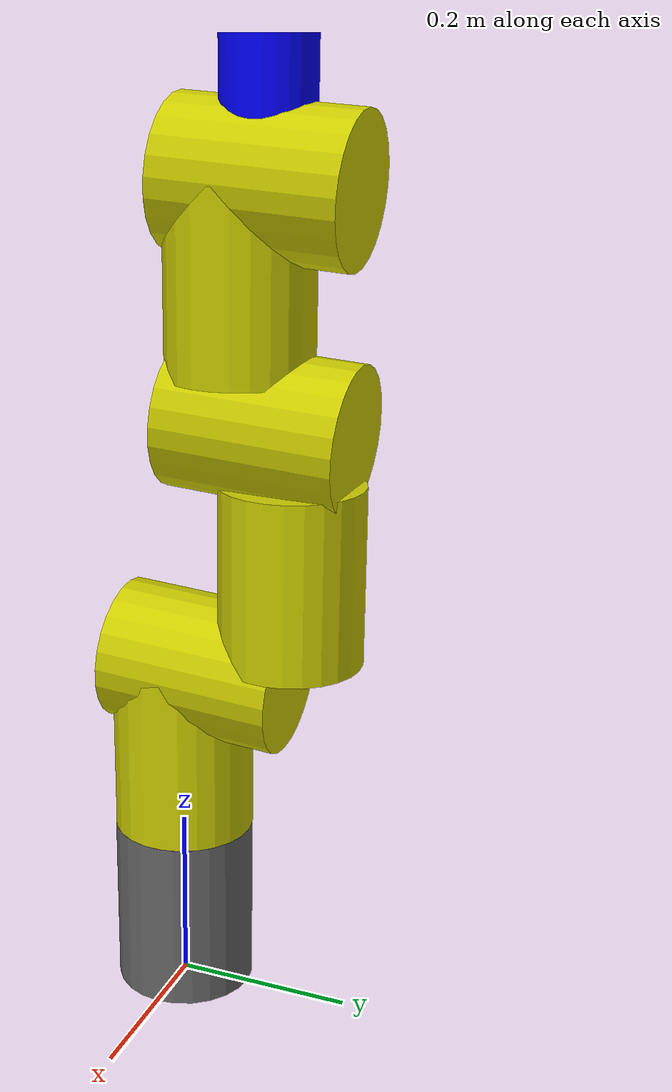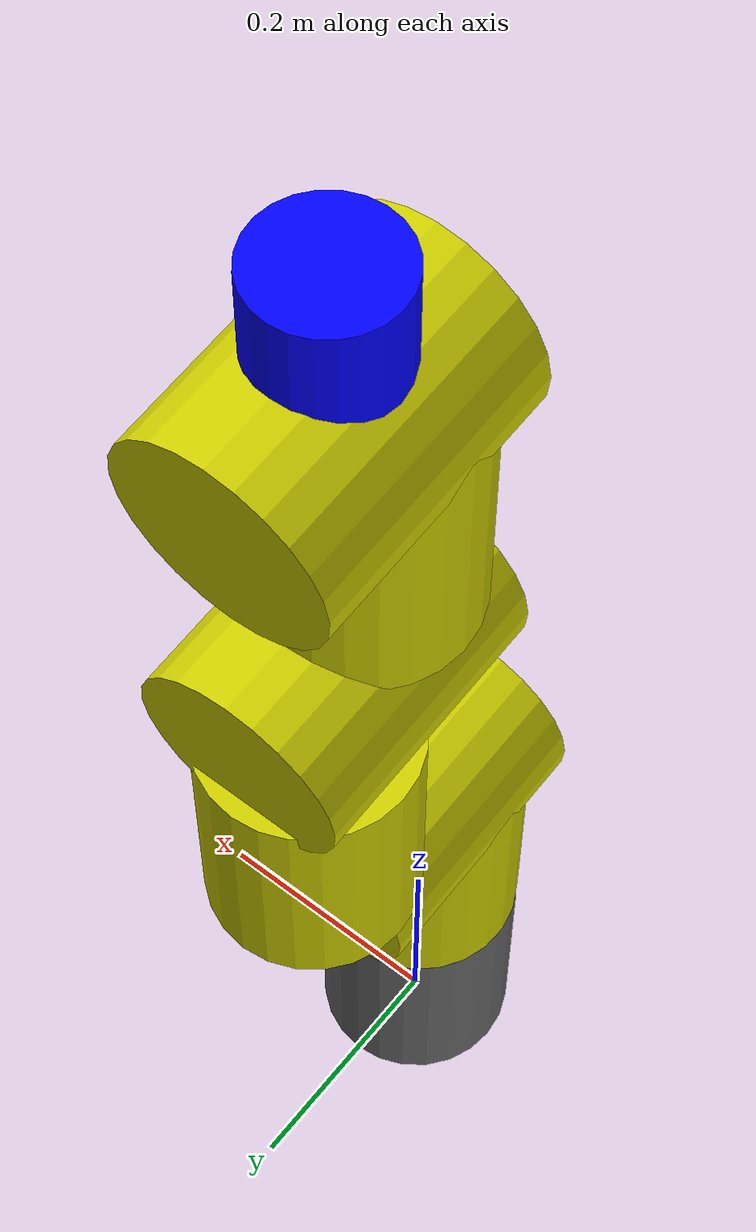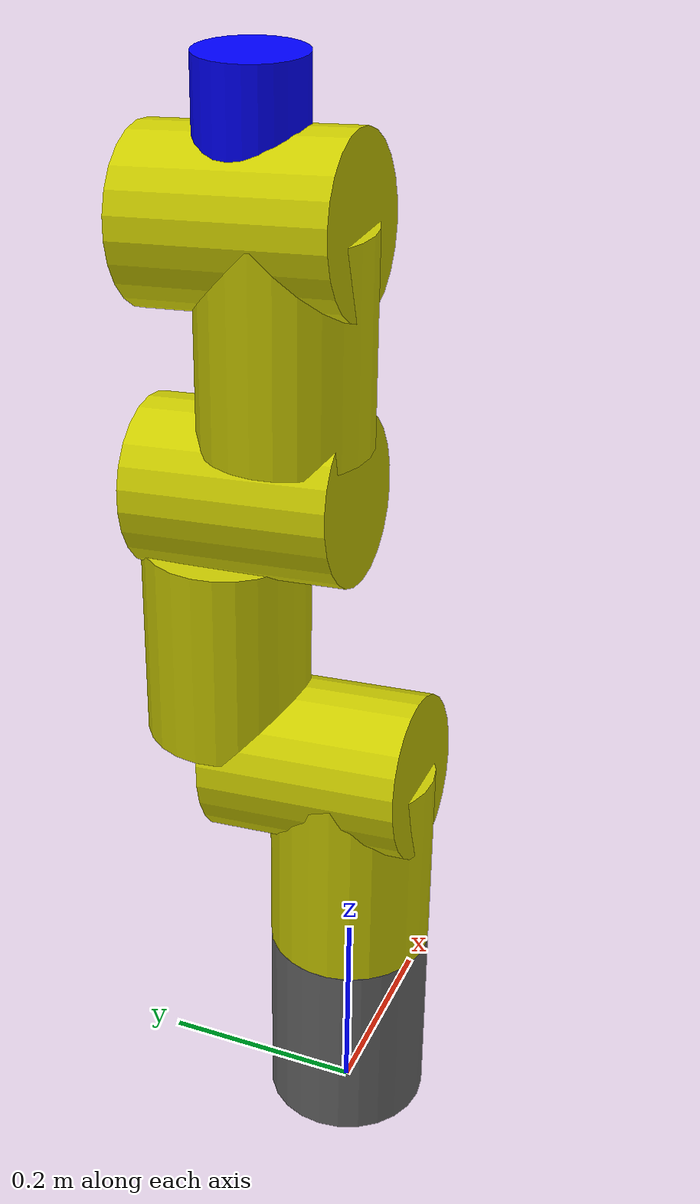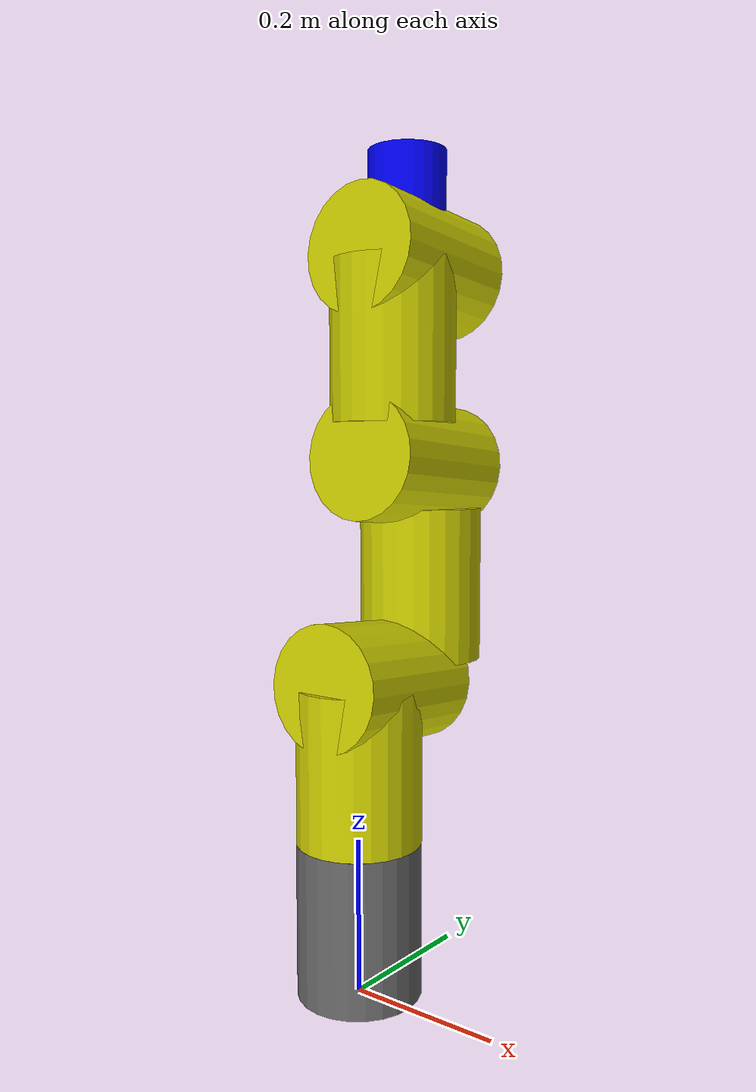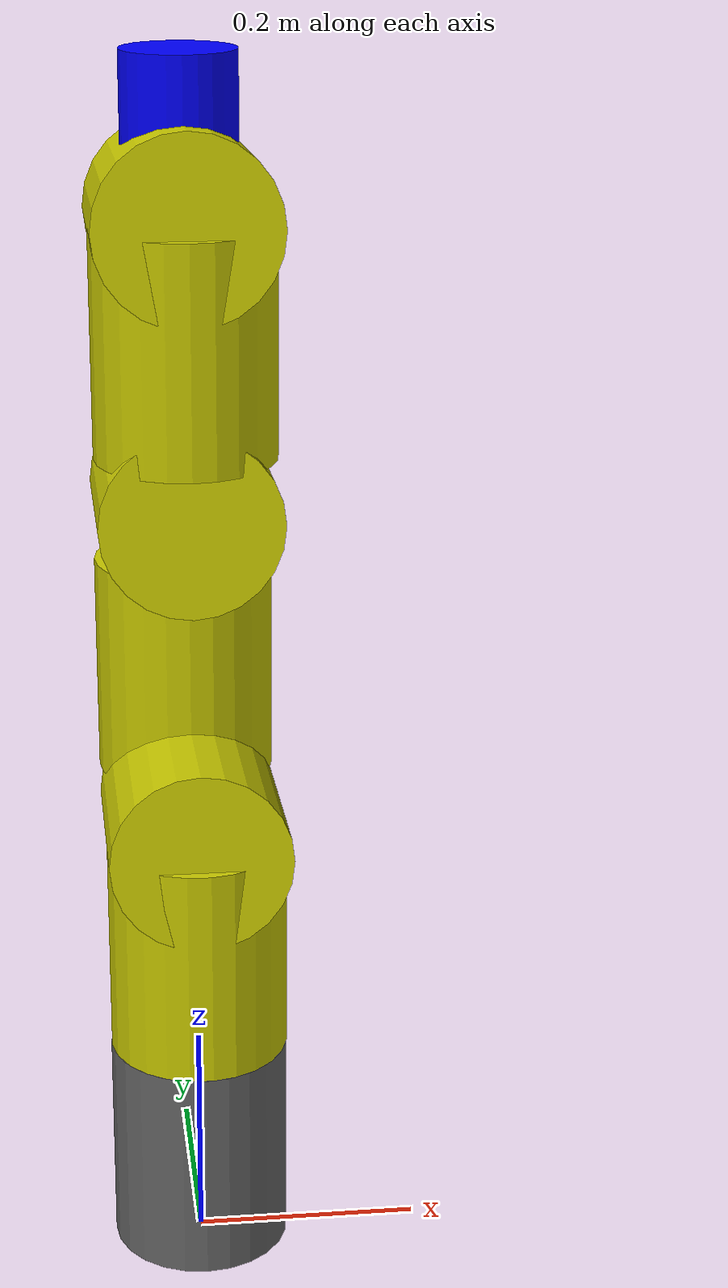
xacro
<?xml version="1.0"?>

<robot name="kuka_ex5" xmlns:xacro="http://wiki.ros.org/xacro">
    <xacro:include filename="$(find kuka_ex5)/urdf/kuka_ex5_macro.xacro" />

		<xacro:base_link_macro
			base_link_name="base_link">
		</xacro:base_link_macro>
		<xacro:kuka_joint
			name="joint1"
			type="revolute"
			parent="base_link"
			child="link1">
			<origin xyz="0 0 0.3" />
			<axis xyz="0 0 1"/>
			<limit effort="176" velocity ="1.71" lower="${-170 * 3.14 / 180}" upper="${170 * 3.14 / 180}"/>
		</xacro:kuka_joint>
		<xacro:kuka_link name="link1">
			<geometry>
				<cylinder length="0.2" radius="0.08"/>
			</geometry>
			<origin xyz="0 0 0" rpy="0 0 0.09"/>
		</xacro:kuka_link>
		<xacro:kuka_joint
			name="joint2"
			type="revolute"
			parent="link1"
			child="link2">
			<origin xyz="0 0.03 0.1" />
			<axis xyz="0 1 0"/>
			<limit effort="176" velocity ="1.71" lower="${-120 * 3.14 / 180}" upper="${120 * 3.14 / 180}"/>
		</xacro:kuka_joint>
		<xacro:kuka_link name="link2">
			<geometry>
				<cylinder length="0.2" radius="0.08"/>
			</geometry>
			<origin xyz="0 0 0" rpy="1.5 0 0"/>
		</xacro:kuka_link>
		<xacro:kuka_joint
			name="joint3"
			type="revolute"
			parent="link2"
			child="link3">
			<origin xyz="0 0.1 0.12" />
			<axis xyz="0 0 1"/>
			<limit effort="110" velocity ="1.74" lower="${-170 * 3.14 / 180}" upper="${170 * 3.14 / 180}"/>
		</xacro:kuka_joint>
		<xacro:kuka_link name="link3">
			<geometry>
				<cylinder length="0.2" radius="0.08"/>
			</geometry>
			<origin xyz="0 0 0" rpy="0 0 0"/>
		</xacro:kuka_link>
		<xacro:kuka_joint
			name="joint4"
			type="revolute"
			parent="link3"
			child="link4">
			<origin xyz="0 -0.03 0.16" />
			<axis xyz="0 -1 0"/>
			<limit effort="110" velocity ="2.26" lower="${-120 * 3.14 / 180}" upper="${120 * 3.14 / 180}"/>
		</xacro:kuka_joint>
		<xacro:kuka_link name="link4">
			<geometry>
				<cylinder length="0.2" radius="0.08"/>
			</geometry>
			<origin xyz="0 0 0" rpy="1.5 0 0"/>
		</xacro:kuka_link>
		<xacro:kuka_joint
			name="joint5"
			type="revolute"
			parent="link4"
			child="link5">
			<origin xyz="0 -0.03 0.15" />
			<axis xyz="0 0 1"/>
			<limit effort="110" velocity ="2.44" lower="${-170 * 3.14 / 180}" upper="${170 * 3.14 / 180}"/>
		</xacro:kuka_joint>
		<xacro:kuka_link name="link5">
			<geometry>
				<cylinder length="0.2" radius="0.08"/>
			</geometry>
			<origin xyz="0 0 0" rpy="0 0 0"/>
		</xacro:kuka_link>
		<xacro:kuka_joint
			name="joint6"
			type="revolute"
			parent="link5"
			child="link6">
			<origin xyz="0 0.03 0.1" />
			<axis xyz="0 1 0"/>
			<limit effort="40" velocity ="3.14" lower="${-120 * 3.14 / 180}" upper="${120 * 3.14 / 180}"/>
		</xacro:kuka_joint>
		<xacro:kuka_link name="link6">
			<geometry>
				<cylinder length="0.2" radius="0.08"/>
			</geometry>
			<origin xyz="0 0 0" rpy="1.5 0 0"/>
		</xacro:kuka_link>
		<xacro:kuka_joint
			name="joint7"
			type="revolute"
			parent="link6"
			child="end_effector">
			<origin xyz="0 0 0.1" />
			<axis xyz="0 0 1"/>
			<limit effort="40" velocity ="3.14" lower="${-175 * 3.14 / 180}" upper="${175 * 3.14 / 180}"/>
		</xacro:kuka_joint>
		<xacro:end_effector name="end_effector">
			<geometry>
				<cylinder length="0.08" radius="0.05"/>
			</geometry>
			<origin xyz="0 0 0" rpy="0 0 0"/>
		</xacro:end_effector>
</robot>

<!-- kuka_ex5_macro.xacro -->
<robot name="kuka_ex5_macro" xmlns:xacro="http://wiki.ros.org/xacro">
	<xacro:macro name="base_link_macro" params="base_link_name">
		<link name="${base_link_name}">
			<visual>
				<geometry>
					<cylinder length="0.2" radius="0.08"/>
				</geometry>
				<origin rpy="0 0 0" xyz="0 0 0.1"/>
				<material name="grey">
						<color rgba="0.4 0.4 0.4 1.0"/>
				</material>
			</visual>
			<collision>
				<geometry>
					<cylinder length="0.5" radius="0.08"/>
				</geometry>
			<origin rpy="0 0 0" xyz="0 0 0"/>
			</collision>
			<inertial>
				<mass value="1"/>
					<inertia ixx="1.0" ixy="0.0" ixz="0.0" iyy="1.0" iyz="0.0" izz="1.0"/>
			</inertial>
		</link>
	</xacro:macro>
	<xacro:macro name="kuka_joint" params="name type parent child *origin *axis *limit">
		<joint name="${name}" type="${type}">
			<parent link="${parent}" />
			<child link="${child}" />
			<xacro:insert_block name="origin" />
			<xacro:insert_block name="axis" />
			<xacro:insert_block name = "limit" />
			<material name="yellow">
				<color rgba="0.8 0.8 0.0 1.0"/>
			</material>
		 	<dynamics damping="50" friction="1"/>
		</joint>
	</xacro:macro>
	<xacro:macro name="kuka_link" params="name *geometry *origin">
		<link name="${name}">
			<visual>
				<xacro:insert_block name="geometry" />
				<xacro:insert_block name="origin" />
		   		<material name="yellow">
		     			<color rgba="0.8 0.8 0.0 1.0"/>
		    		</material>
		  	</visual>
		 <collision>
			<xacro:insert_block name="geometry" />
			<xacro:insert_block name="origin" />
		</collision>
			<inertial>
				<mass value="1"/>
					<inertia ixx="1.0" ixy="0.0" ixz="0.0" iyy="1.0" iyz="0.0" izz="1.0"/>
		  	</inertial>
	  	</link>
	</xacro:macro>
	<xacro:macro name="end_effector" params="name *geometry *origin">
		<link name="${name}">
			<visual>
				<xacro:insert_block name="geometry" />
				<xacro:insert_block name="origin" />
		    		<material name="blue">
		    	 		<color rgba="0.0 0.0 1.0 1.0"/>
		    		</material>
		  	</visual>
		  	<collision>
				<xacro:insert_block name="geometry" />
				<xacro:insert_block name="origin" />
			</collision>
			<inertial>
				<mass value="0.5"/>
					<inertia ixx="1.0" ixy="0.0" ixz="0.0" iyy="1.0" iyz="0.0" izz="1.0"/>
		  	</inertial>
	  	</link>
	</xacro:macro>
</robot>
